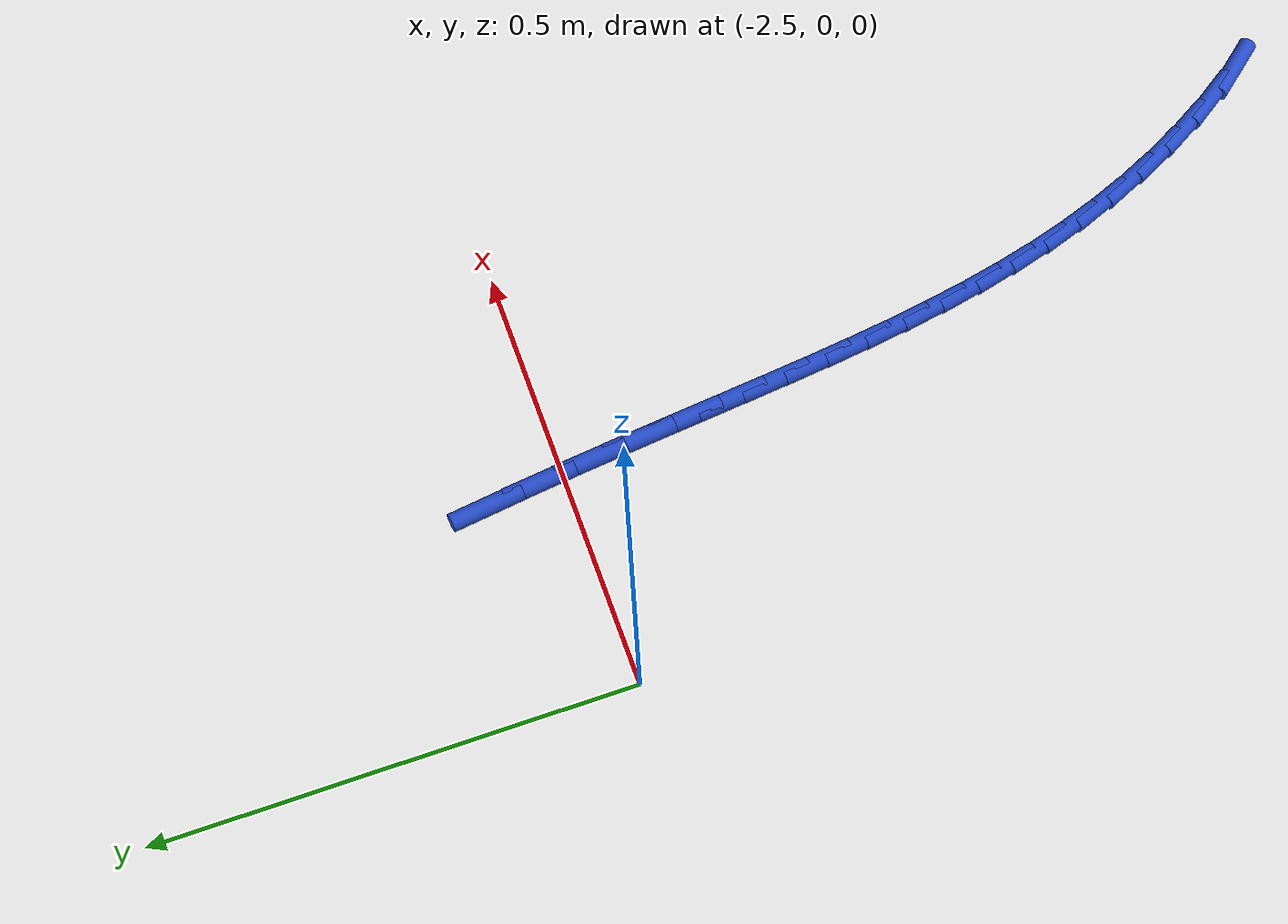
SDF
<sdf version="1.6">
 <world name="default">
  <model name="ground_plane">
   <static>1</static>
   <link name="link">
    <collision name="collision">
     <geometry><plane><normal>0 0 1</normal><size>100 100</size></plane></geometry>
     <surface><friction><ode><mu>100</mu><mu2>50</mu2></ode></friction></surface>
    </collision>
    <visual name="visual">
     <cast_shadows>0</cast_shadows>
     <geometry><plane><normal>0 0 1</normal><size>100 100</size></plane></geometry>
     <material>
      <script><uri>file://media/materials/scripts/gazebo.material</uri><name>Gazebo/WhiteGlow</name></script>
     </material>
    </visual>
   </link>
  </model>
  <model name="line">
   <link name="link_83">
    <pose>-2.265276744408213 0.08622859444604965 0.01 0 1.57 -1.429643956086513</pose>
    <collision name="collision">
     <geometry><cylinder><radius>0.01</radius><length>0.08</length></cylinder></geometry>
    </collision>
    <visual name="visual">
     <material>
      <script><name>Gazebo/Blue</name><uri>file://media/materials/scripts/gazebo.material</uri></script>
     </material>
     <geometry><cylinder><radius>0.01</radius><length>0.08</length></cylinder></geometry>
    </visual>
   </link>
   <link name="link_84">
    <pose>-2.2568052544228068 0.026611082500059523 0.01 0 1.57 -1.441862669664873</pose>
    <collision name="collision">
     <geometry><cylinder><radius>0.01</radius><length>0.08</length></cylinder></geometry>
    </collision>
    <visual name="visual">
     <material>
      <script><name>Gazebo/Blue</name><uri>file://media/materials/scripts/gazebo.material</uri></script>
     </material>
     <geometry><cylinder><radius>0.01</radius><length>0.08</length></cylinder></geometry>
    </visual>
   </link>
   <link name="link_85">
    <pose>-2.249333304291941 -0.031019330299719636 0.01 0 1.57 -1.451104340832027</pose>
    <collision name="collision">
     <geometry><cylinder><radius>0.01</radius><length>0.08</length></cylinder></geometry>
    </collision>
    <visual name="visual">
     <material>
      <script><name>Gazebo/Blue</name><uri>file://media/materials/scripts/gazebo.material</uri></script>
     </material>
     <geometry><cylinder><radius>0.01</radius><length>0.08</length></cylinder></geometry>
    </visual>
   </link>
   <link name="link_86">
    <pose>-2.2426254290968206 -0.0867942577718597 0.01 0 1.57 -1.4569677648707093</pose>
    <collision name="collision">
     <geometry><cylinder><radius>0.01</radius><length>0.08</length></cylinder></geometry>
    </collision>
    <visual name="visual">
     <material>
      <script><name>Gazebo/Blue</name><uri>file://media/materials/scripts/gazebo.material</uri></script>
     </material>
     <geometry><cylinder><radius>0.01</radius><length>0.08</length></cylinder></geometry>
    </visual>
   </link>
   <link name="link_87">
    <pose>-2.236446163918648 -0.14084531373493356 0.01 0 1.57 -1.4590590518194526</pose>
    <collision name="collision">
     <geometry><cylinder><radius>0.01</radius><length>0.08</length></cylinder></geometry>
    </collision>
    <visual name="visual">
     <material>
      <script><name>Gazebo/Blue</name><uri>file://media/materials/scripts/gazebo.material</uri></script>
     </material>
     <geometry><cylinder><radius>0.01</radius><length>0.08</length></cylinder></geometry>
    </visual>
   </link>
   <link name="link_88">
    <pose>-2.230560043838627 -0.19330411200751138 0.01 0 1.57 -1.4570027828493066</pose>
    <collision name="collision">
     <geometry><cylinder><radius>0.01</radius><length>0.08</length></cylinder></geometry>
    </collision>
    <visual name="visual">
     <material>
      <script><name>Gazebo/Blue</name><uri>file://media/materials/scripts/gazebo.material</uri></script>
     </material>
     <geometry><cylinder><radius>0.01</radius><length>0.08</length></cylinder></geometry>
    </visual>
   </link>
   <link name="link_89">
    <pose>-2.2247316039379603 -0.24430226640816585 0.01 0 1.57 -1.4504559139137991</pose>
    <collision name="collision">
     <geometry><cylinder><radius>0.01</radius><length>0.08</length></cylinder></geometry>
    </collision>
    <visual name="visual">
     <material>
      <script><name>Gazebo/Blue</name><uri>file://media/materials/scripts/gazebo.material</uri></script>
     </material>
     <geometry><cylinder><radius>0.01</radius><length>0.08</length></cylinder></geometry>
    </visual>
   </link>
   <link name="link_90">
    <pose>-2.2187253792978545 -0.29397139075546913 0.01 0 1.57 -1.4391250333904033</pose>
    <collision name="collision">
     <geometry><cylinder><radius>0.01</radius><length>0.08</length></cylinder></geometry>
    </collision>
    <visual name="visual">
     <material>
      <script><name>Gazebo/Blue</name><uri>file://media/materials/scripts/gazebo.material</uri></script>
     </material>
     <geometry><cylinder><radius>0.01</radius><length>0.08</length></cylinder></geometry>
    </visual>
   </link>
   <link name="link_91">
    <pose>-2.2123059049995093 -0.34244309886799307 0.01 0 1.57 -1.4227873441907355</pose>
    <collision name="collision">
     <geometry><cylinder><radius>0.01</radius><length>0.08</length></cylinder></geometry>
    </collision>
    <visual name="visual">
     <material>
      <script><name>Gazebo/Blue</name><uri>file://media/materials/scripts/gazebo.material</uri></script>
     </material>
     <geometry><cylinder><radius>0.01</radius><length>0.08</length></cylinder></geometry>
    </visual>
   </link>
   <link name="link_92">
    <pose>-2.2052377161241297 -0.38984900456431043 0.01 0 1.57 -1.40131515135901</pose>
    <collision name="collision">
     <geometry><cylinder><radius>0.01</radius><length>0.08</length></cylinder></geometry>
    </collision>
    <visual name="visual">
     <material>
      <script><name>Gazebo/Blue</name><uri>file://media/materials/scripts/gazebo.material</uri></script>
     </material>
     <geometry><cylinder><radius>0.01</radius><length>0.08</length></cylinder></geometry>
    </visual>
   </link>
   <link name="link_93">
    <pose>-2.1972853477529197 -0.43632072166299163 0.01 0 1.57 -1.3747025998921099</pose>
    <collision name="collision">
     <geometry><cylinder><radius>0.01</radius><length>0.08</length></cylinder></geometry>
    </collision>
    <visual name="visual">
     <material>
      <script><name>Gazebo/Blue</name><uri>file://media/materials/scripts/gazebo.material</uri></script>
     </material>
     <geometry><cylinder><radius>0.01</radius><length>0.08</length></cylinder></geometry>
    </visual>
   </link>
   <link name="link_94">
    <pose>-2.1882133349670827 -0.48198986398260935 0.01 0 1.57 -1.3430919431205626</pose>
    <collision name="collision">
     <geometry><cylinder><radius>0.01</radius><length>0.08</length></cylinder></geometry>
    </collision>
    <visual name="visual">
     <material>
      <script><name>Gazebo/Blue</name><uri>file://media/materials/scripts/gazebo.material</uri></script>
     </material>
     <geometry><cylinder><radius>0.01</radius><length>0.08</length></cylinder></geometry>
    </visual>
   </link>
   <link name="link_95">
    <pose>-2.177786212847822 -0.5269880453417355 0.01 0 1.57 -1.306794972696666</pose>
    <collision name="collision">
     <geometry><cylinder><radius>0.01</radius><length>0.08</length></cylinder></geometry>
    </collision>
    <visual name="visual">
     <material>
      <script><name>Gazebo/Blue</name><uri>file://media/materials/scripts/gazebo.material</uri></script>
     </material>
     <geometry><cylinder><radius>0.01</radius><length>0.08</length></cylinder></geometry>
    </visual>
   </link>
   <link name="link_96">
    <pose>-2.1657685164763407 -0.5714468795589429 0.01 0 1.57 -1.2663039586789318</pose>
    <collision name="collision">
     <geometry><cylinder><radius>0.01</radius><length>0.08</length></cylinder></geometry>
    </collision>
    <visual name="visual">
     <material>
      <script><name>Gazebo/Blue</name><uri>file://media/materials/scripts/gazebo.material</uri></script>
     </material>
     <geometry><cylinder><radius>0.01</radius><length>0.08</length></cylinder></geometry>
    </visual>
   </link>
   <link name="link_97">
    <pose>-2.151924780933842 -0.6154979804528018 0.01 0 1.57 -1.2222863352370261</pose>
    <collision name="collision">
     <geometry><cylinder><radius>0.01</radius><length>0.08</length></cylinder></geometry>
    </collision>
    <visual name="visual">
     <material>
      <script><name>Gazebo/Blue</name><uri>file://media/materials/scripts/gazebo.material</uri></script>
     </material>
     <geometry><cylinder><radius>0.01</radius><length>0.08</length></cylinder></geometry>
    </visual>
   </link>
   <link name="link_98">
    <pose>-2.1360195413015317 -0.6592729618418852 0.01 0 1.57 -1.1755591681622433</pose>
    <collision name="collision">
     <geometry><cylinder><radius>0.01</radius><length>0.08</length></cylinder></geometry>
    </collision>
    <visual name="visual">
     <material>
      <script><name>Gazebo/Blue</name><uri>file://media/materials/scripts/gazebo.material</uri></script>
     </material>
     <geometry><cylinder><radius>0.01</radius><length>0.08</length></cylinder></geometry>
    </visual>
   </link>
   <link name="link_99">
    <pose>-2.1178173326606102 -0.7029034375447647 0.01 0 1.57 -1.1270433092349987</pose>
    <collision name="collision">
     <geometry><cylinder><radius>0.01</radius><length>0.08</length></cylinder></geometry>
    </collision>
    <visual name="visual">
     <material>
      <script><name>Gazebo/Blue</name><uri>file://media/materials/scripts/gazebo.material</uri></script>
     </material>
     <geometry><cylinder><radius>0.01</radius><length>0.08</length></cylinder></geometry>
    </visual>
   </link>
   <link name="link_100">
    <pose>-2.0970826900922837 -0.7465210213800126 0.01 0 1.57 -1.0777021965019704</pose>
    <collision name="collision">
     <geometry><cylinder><radius>0.01</radius><length>0.08</length></cylinder></geometry>
    </collision>
    <visual name="visual">
     <material>
      <script><name>Gazebo/Blue</name><uri>file://media/materials/scripts/gazebo.material</uri></script>
     </material>
     <geometry><cylinder><radius>0.01</radius><length>0.08</length></cylinder></geometry>
    </visual>
   </link>
   <link name="link_101">
    <pose>-2.0735801486777534 -0.7902573271662015 0.01 0 1.57 -1.0284304174120815</pose>
    <collision name="collision">
     <geometry><cylinder><radius>0.01</radius><length>0.08</length></cylinder></geometry>
    </collision>
    <visual name="visual">
     <material>
      <script><name>Gazebo/Blue</name><uri>file://media/materials/scripts/gazebo.material</uri></script>
     </material>
     <geometry><cylinder><radius>0.01</radius><length>0.08</length></cylinder></geometry>
    </visual>
   </link>
   <link name="link_102">
    <pose>-2.0470742230096106 -0.8342395991675253 0.01 0 1.57 -0.9706587719808073</pose>
    <collision name="collision">
     <geometry><cylinder><radius>0.01</radius><length>0.08</length></cylinder></geometry>
    </collision>
    <visual name="visual">
     <material>
      <script><name>Gazebo/Blue</name><uri>file://media/materials/scripts/gazebo.material</uri></script>
     </material>
     <geometry><cylinder><radius>0.01</radius><length>0.08</length></cylinder></geometry>
    </visual>
   </link>
   <link name="link_103">
    <pose>-2.017325280743502 -0.8777106749588804 0.01 0 1.57 -0.880482811472908</pose>
    <collision name="collision">
     <geometry><cylinder><radius>0.01</radius><length>0.08</length></cylinder></geometry>
    </collision>
    <visual name="visual">
     <material>
      <script><name>Gazebo/Blue</name><uri>file://media/materials/scripts/gazebo.material</uri></script>
     </material>
     <geometry><cylinder><radius>0.01</radius><length>0.08</length></cylinder></geometry>
    </visual>
   </link>
  </model>
 </world>
</sdf>
